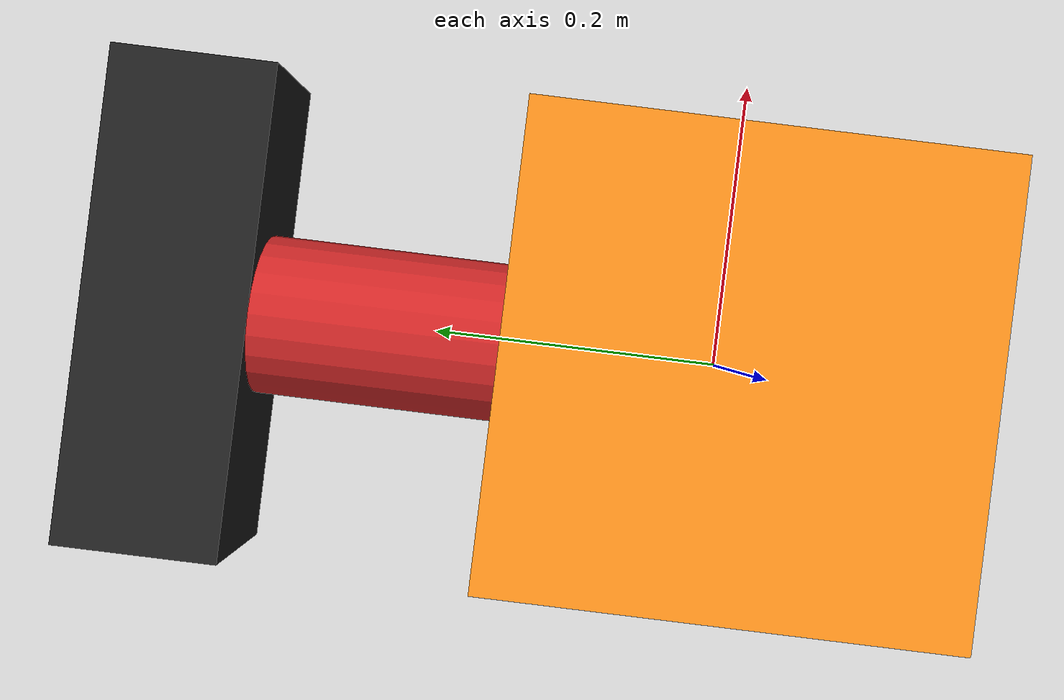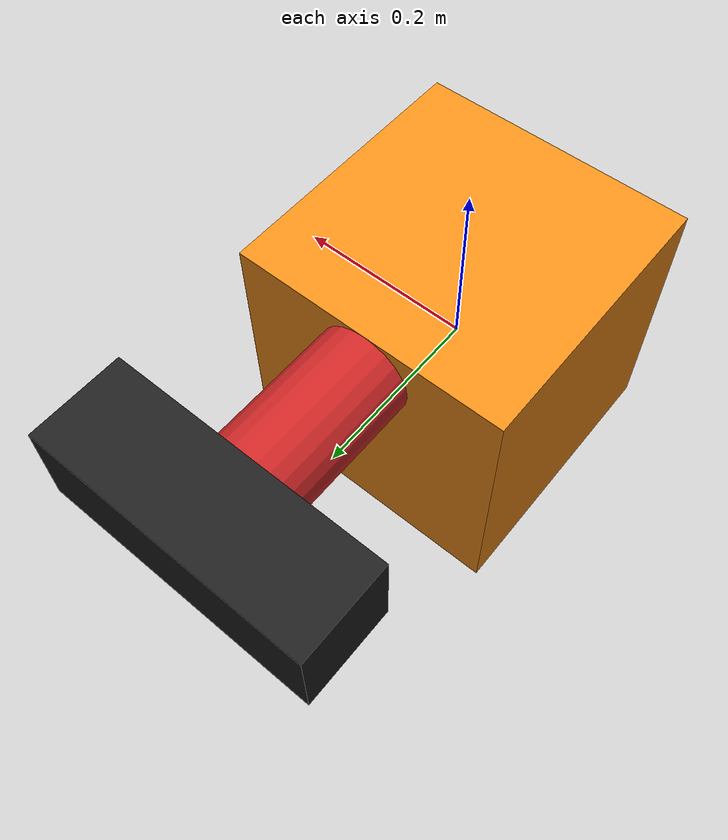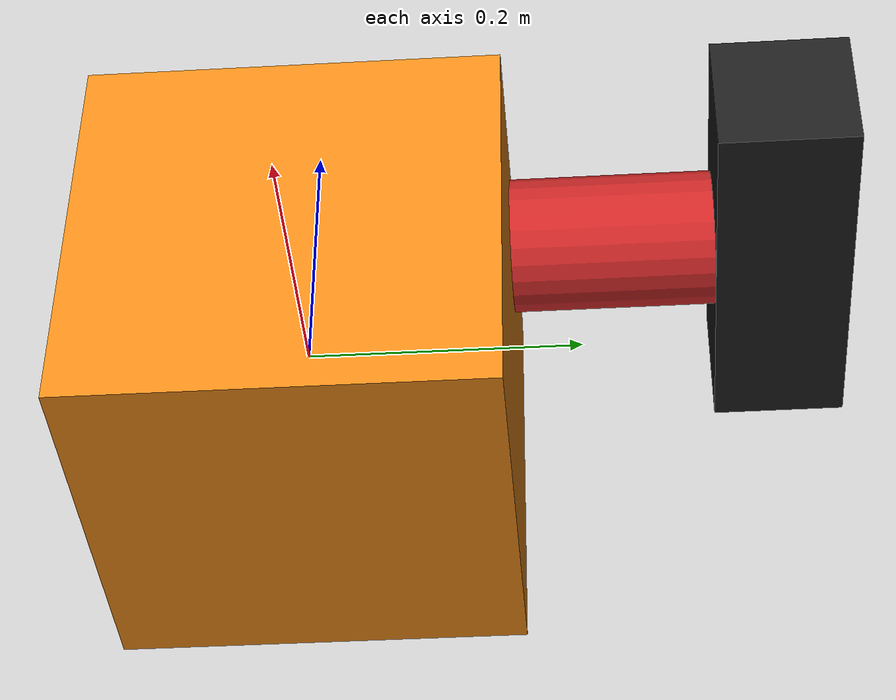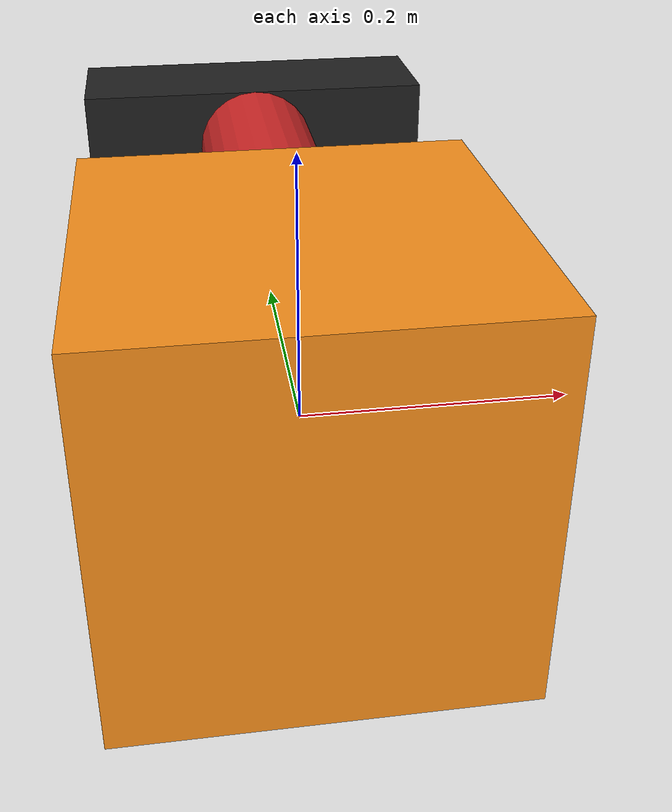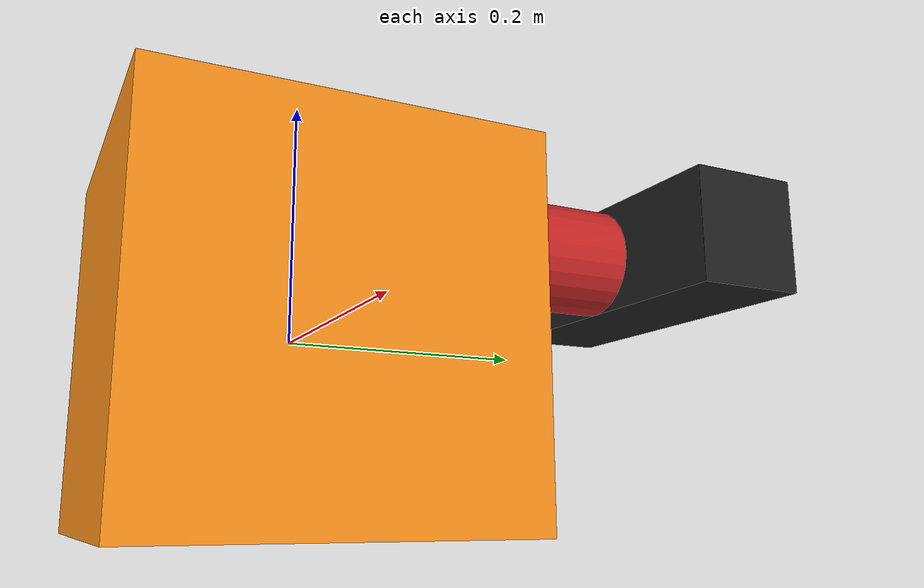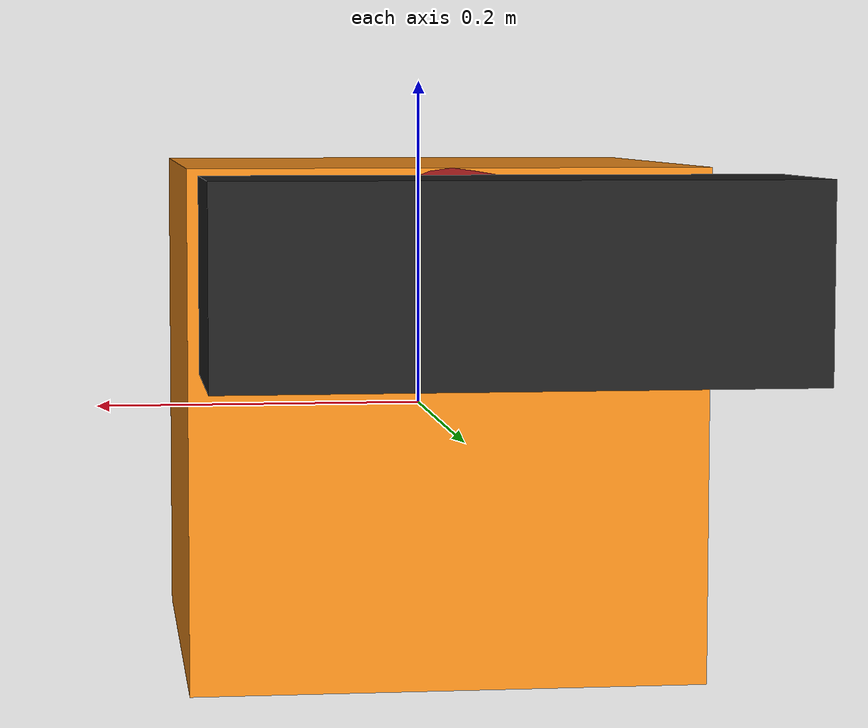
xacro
<?xml version="1.0"?>
<robot name="quadrotor" xmlns:xacro="http://www.ros.org/wiki/xacro">

  <xacro:property name="effort_limit" value="100.0" />
  <xacro:property name="velocity_limit" value="0.5" />
  <xacro:property name="damping" value="0.2" />
  <xacro:property name="friction" value="0.0" />
  <xacro:property name="gimbal_yaw_min" value="-30" />
  <xacro:property name="gimbal_yaw_max" value="+30" />
  <xacro:property name="gimbal_pitch_min" value="-30" />
  <xacro:property name="gimbal_pitch_max" value="+30" />

  <xacro:property name="PI" value="3.1415926535897931"/>
  <xacro:property name="mass_base" value="2" />
  <xacro:property name="mass_gimbal" value="0.1" />
  <xacro:property name="mass_camera" value="0.3" />
  <xacro:property name="base_width" value="0.3" />
  <xacro:property name="base_height" value=".3" />
  <xacro:property name="gimbal_arm_radius" value="0.05" />
  <xacro:property name="gimbal_arm_length" value="0.2" />
  <xacro:property name="camera_width" value="0.3" />
  <xacro:property name="camera_height" value="0.1" />
  <xacro:property name="camera_depth" value="0.1" />
  <xacro:property name="camera_link" value="0.05" />

  <xacro:include filename="$(find quad_flight)/urdf/quadrotor_test.gazebo" />
  <xacro:include filename="$(find quad_flight)/urdf/materials.xacro" />

  <link name="gimbal_base">
    <collision>
      <origin xyz="0 0 0" rpy="0 0 0"/>
      <geometry>
    	<box size="${base_width} ${base_width} ${base_height}"/>
      </geometry>
    </collision>

    <visual>
      <origin xyz="0 0 0" rpy="0 0 0"/>
      <geometry>
    	<box size="${base_width} ${base_width} ${base_height}"/>
      </geometry>
      <material name="orange"/>
    </visual>

    <collision>
      <origin xyz="0 ${base_width/2 + gimbal_arm_length/2} ${base_width/2-gimbal_arm_radius}" rpy="${0.5*PI} 0 0"/>
      <geometry>
    	<cylinder radius="${gimbal_arm_radius}" length="${gimbal_arm_length}" />
      </geometry>
    </collision>

    <visual>
      <origin xyz="0 ${base_width/2 + gimbal_arm_length/2} ${base_width/2-gimbal_arm_radius}" rpy="${0.5*PI} 0 0"/>
      <geometry>
    	<cylinder radius="${gimbal_arm_radius}" length="${gimbal_arm_length}" />
      </geometry>
      <material name="red"/>
    </visual>

    <inertial>
      <origin xyz="0 0 0" rpy="0 0 0"/>
      <mass value="${mass_base}"/>
      <inertia
      ixx="${mass_base / 12.0 * (base_width*base_width + base_height*base_height)}" ixy="0.0" ixz="0.0"
      iyy="${mass_base / 12.0 * (base_height*base_height + base_width*base_width)}" iyz="0.0"
      izz="${mass_base / 12.0 * (base_width*base_width + base_width*base_width)}"/>
    </inertial>
  </link>

  <joint name="gimbal_yaw_joint" type="revolute">
    <parent link="gimbal_base"/>
    <child link="gimbal_yaw"/>
    <origin xyz="0 ${base_width/2 + gimbal_arm_length} ${base_width/2-gimbal_arm_radius}"/>
    <axis xyz="0 0 1"/>
    <dynamics damping="${damping}" friction="${friction}"/>
    <limit effort="${effort_limit}" velocity="${velocity_limit}" lower="${gimbal_yaw_min/ 180. * PI}" upper="${gimbal_yaw_max/ 180. * PI}" />
  </joint>

  <link name="gimbal_yaw">
    <inertial>
      <origin xyz="0 ${camera_width/2} 0" rpy="${0.5*PI} 0 0"/>
      <mass value="${mass_gimbal}"/>
      <inertia
        ixx="${mass_gimbal / 12.0 * (camera_width*camera_width + camera_height*camera_height)}" ixy="0.0" ixz="0.0"
        iyy="${mass_gimbal / 12.0 * (camera_height*camera_height + camera_width*camera_width)}" iyz="0.0"
        izz="${mass_gimbal / 12.0 * (camera_width*camera_width + camera_width*camera_width)}"/>
    </inertial>
  </link>

  <joint name="gimbal_pitch_joint" type="revolute">
    <parent link="gimbal_yaw"/>
    <child link="gimbal_pitch"/>
    <origin xyz="0 0 0"/>
    <axis xyz="1 0 0"/>
    <dynamics damping="${damping}" friction="${friction}"/>
    <limit effort="${effort_limit}" velocity="${velocity_limit}" lower="${gimbal_pitch_min/ 180. * PI}" upper="${gimbal_pitch_max/ 180. * PI}" />
  </joint>

  <link name="gimbal_pitch">
    <collision>
      <origin xyz="0 0 0" rpy="${0.5*PI} 0 0"/>
      <geometry>
    	<box size="${camera_width} ${camera_depth} ${camera_height}"/>
      </geometry>
    </collision>

    <visual>
      <origin xyz="0 0 0" rpy="${0.5*PI} 0 0"/>
      <geometry>
    	<box size="${camera_width} ${camera_depth} ${camera_height}"/>
      </geometry>
      <material name="black"/>
    </visual>

    <inertial>
      <origin xyz="0 0 0" rpy="${0.5*PI} 0 0"/>
      <mass value="${mass_gimbal}"/>
      <inertia
      ixx="${mass_gimbal / 12.0 * (camera_width*camera_width + camera_height*camera_height)}" ixy="0.0" ixz="0.0"
      iyy="${mass_gimbal / 12.0 * (camera_height*camera_height + camera_width*camera_width)}" iyz="0.0"
      izz="${mass_gimbal / 12.0 * (camera_width*camera_width + camera_width*camera_width)}"/>
    </inertial>
  </link>

  <transmission name="tran1">
    <type>transmission_interface/SimpleTransmission</type>
    <joint name="gimbal_pitch_joint">
      <hardwareInterface>EffortJointInterface</hardwareInterface>
    </joint>
    <actuator name="motor1">
      <hardwareInterface>EffortJointInterface</hardwareInterface>
      <mechanicalReduction>1</mechanicalReduction>
    </actuator>
  </transmission>

  <transmission name="tran2">
    <type>transmission_interface/SimpleTransmission</type>
    <joint name="gimbal_yaw_joint">
      <hardwareInterface>EffortJointInterface</hardwareInterface>
    </joint>
    <actuator name="motor2">
      <hardwareInterface>EffortJointInterface</hardwareInterface>
      <mechanicalReduction>1</mechanicalReduction>
    </actuator>
  </transmission>

</robot>
